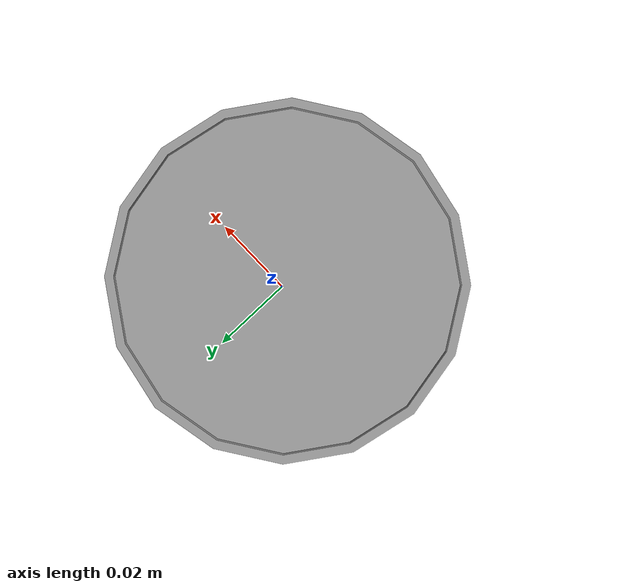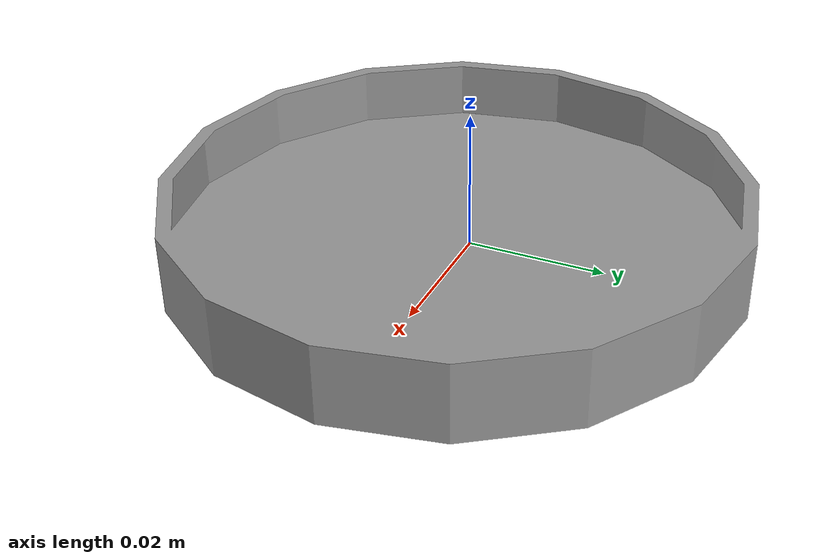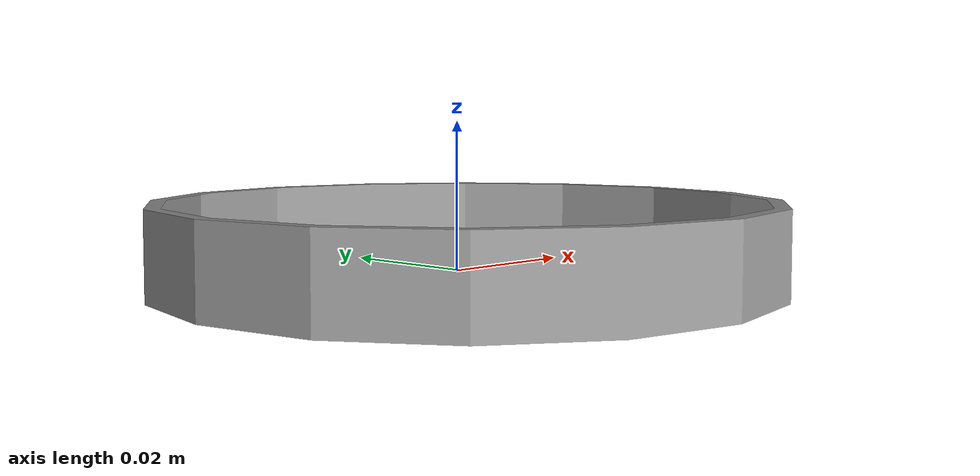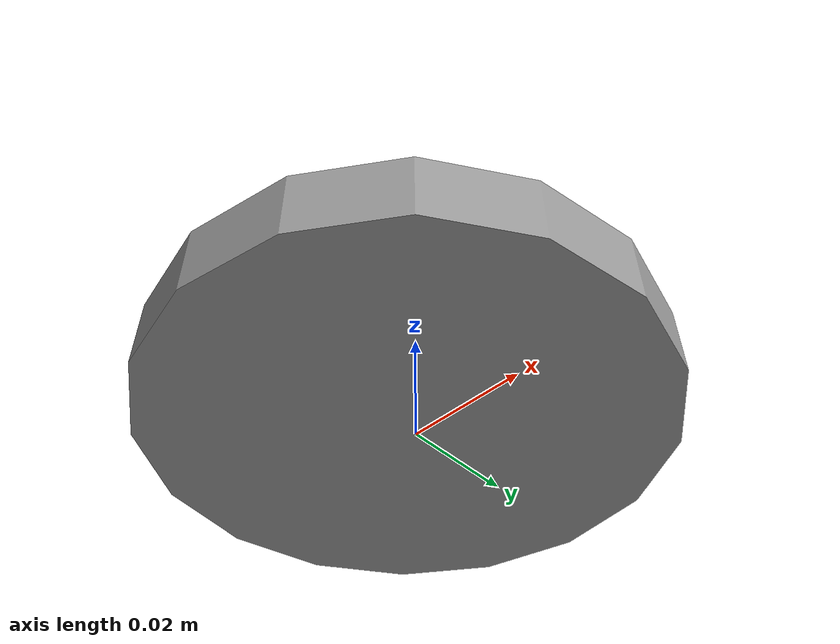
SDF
<?xml version="1.0" ?>
<sdf version="1.5">
  <model name="case_top">
    <link name="link">
      <pose>0 0 0.00575 0 0 0</pose>
      <inertial>
        <mass>0.0142</mass>
        <inertia>
          <ixx>1.2680895833333335e-05</ixx>
          <ixy>0</ixy>
          <ixz>0</ixz>
          <iyy>1.2680895833333335e-05</iyy>
          <iyz>0</iyz>
          <izz>2.5048800000000003e-05</izz>
        </inertia>
      </inertial>

      <collision name="collision">
        <geometry>
          <mesh>
            <uri>model://case_top/meshes/case_top.stl</uri>
          </mesh>
        </geometry>
      </collision>

      <visual name="visual">
        <geometry>
          <mesh>
            <uri>model://case_top/meshes/case_top.stl</uri>
          </mesh>
        </geometry>
        <material>
          <script>
            <uri>file://media/materials/scripts/gazebo.material</uri>
            <name>Gazebo/Gray</name>
          </script>
        </material>
      </visual>

    </link>
  </model>
</sdf>
